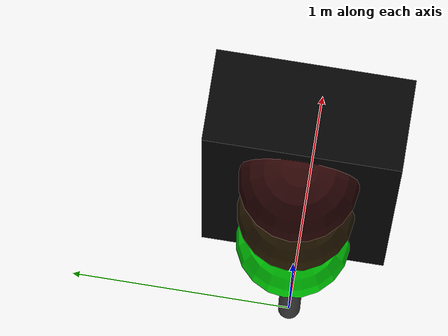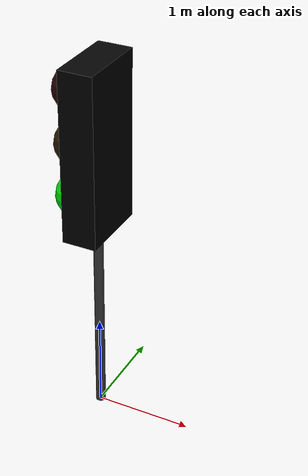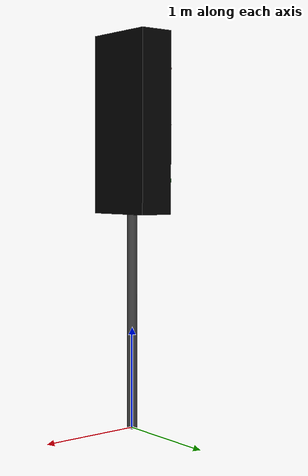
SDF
<?xml version="1.0"?>
<sdf version="1.9">
  <model name="traffic_light_green_model">
    <static>true</static>
    <link name="traffic_light_link">
      <collision name="pole_collision">
        <pose>0 0 1.25 0 0 0</pose>
        <geometry><cylinder><radius>0.05</radius><length>2.5</length></cylinder></geometry>
      </collision>
      <visual name="pole_visual">
        <pose>0 0 1.25 0 0 0</pose>
        <geometry><cylinder><radius>0.05</radius><length>2.5</length></cylinder></geometry>
        <material><ambient>0.25 0.25 0.25 1</ambient><diffuse>0.25 0.25 0.25 1</diffuse></material>
      </visual>

      <collision name="housing_collision">
        <pose>0 0 3.0 0 0 0</pose>
        <geometry><box><size>0.35 0.75 1.75</size></box></geometry>
      </collision>
      <visual name="housing_visual">
        <pose>0 0 3.0 0 0 0</pose>
        <geometry><box><size>0.35 0.75 1.75</size></box></geometry>
        <material><ambient>0.01 0.01 0.01 1</ambient><diffuse>0.01 0.01 0.01 1</diffuse></material>
      </visual>

      <visual name="red_lamp_visual">
        <pose>-0.20 0 3.55 0 0 0</pose>
        <geometry><sphere><radius>0.23</radius></sphere></geometry>
        <material><ambient>0.18 0.02 0.02 1</ambient><diffuse>0.18 0.02 0.02 1</diffuse><emissive>0 0 0 1</emissive></material>
      </visual>
      <visual name="yellow_lamp_visual">
        <pose>-0.20 0 3.00 0 0 0</pose>
        <geometry><sphere><radius>0.23</radius></sphere></geometry>
        <material><ambient>0.18 0.12 0.02 1</ambient><diffuse>0.18 0.12 0.02 1</diffuse><emissive>0 0 0 1</emissive></material>
      </visual>
      <visual name="green_lamp_visual">
        <pose>-0.20 0 2.45 0 0 0</pose>
        <geometry><sphere><radius>0.23</radius></sphere></geometry>
        <material><ambient>0.02 1 0.05 1</ambient><diffuse>0.02 1 0.05 1</diffuse><emissive>0 0.8 0.02 1</emissive></material>
      </visual>
    </link>
  </model>
</sdf>
